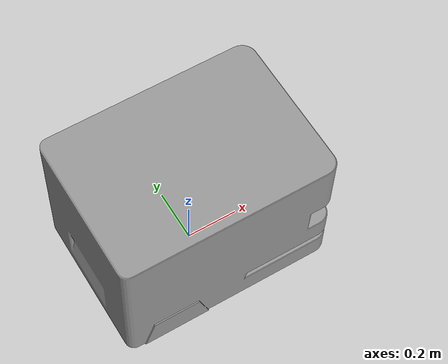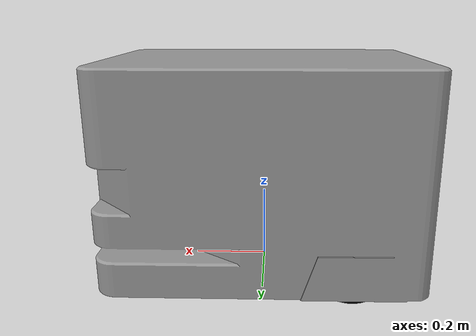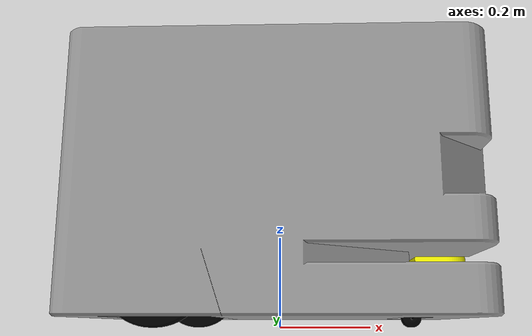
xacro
<?xml version="1.0"?>

<!--this is the main urdf.xacro file which builds actually the robot model by calling the other macros-->
<robot xmlns:xacro="http://wiki.ros.org/xacro" name="sew-maxo-mts-agv">

   <!-- import main macro -->
    <xacro:include filename="$(find sew_agv_description)/urdf/sew_agv_macro.urdf.xacro"/>

    <!-- set ros2 parameters, which will passsed to the macros, can be defined in the launch file-->
   <!-- set parameters defined in sew_agv_macro.xacro -->
    <xacro:arg name="tf_prefix" default=""/>

    <!-- ros2_control related parameters -->
    <xacro:arg name="robot_ip" default="NaN" />
    <xacro:arg name="generate_ros2_control_tag" default="true" />               <!--change default value ??? seems to be not passed to here-->

    <!-- simulation related parameters -->
    <xacro:arg name="use_fake_hardware" default="false" />
    <xacro:arg name="ros2_control_with_gazebo" default="false" />
    <xacro:arg name="standalone_gazebo" default="false" />

   <!-- call the main macro by passing above instanced parameters to build the arm -->

    <xacro:sew_agv_macro
        tf_prefix="$(arg tf_prefix)"
        use_fake_hardware="$(arg use_fake_hardware)"
        robot_ip="$(arg robot_ip)"
        generate_ros2_control_tag="$(arg generate_ros2_control_tag)"
        standalone_gazebo="$(arg standalone_gazebo)"
        ros2_control_with_gazebo="$(arg ros2_control_with_gazebo)"
        >
    </xacro:sew_agv_macro>

</robot>

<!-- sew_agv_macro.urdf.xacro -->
<robot xmlns:xacro="http://www.ros.org/wiki/xacro">

<!--include the helpers with fixed parameters-->
  <xacro:include filename="$(find sew_agv_description)/urdf/materials.urdf.xacro" />

<!--set some parameters with default values used by the macros (kinematics description, simulation and control)-->

  <xacro:macro name="sew_agv_macro" params="
    tf_prefix
    generate_ros2_control_tag:=false
    standalone_gazebo:=false
    ros2_control_with_gazebo:=false
    use_fake_hardware:=false
    robot_ip"
  >

<!--include ros2 control and create an instance if param generate_ros2_control_tag == true and pass necessary params-->

    <xacro:if value="${generate_ros2_control_tag}">
        <!-- ros2 control include -->
        <xacro:include filename="$(find sew_agv_description)/urdf/sew_agv_ros2_control.urdf.xacro" />
        <!-- ros2 control instance -->
        <xacro:sew_agv_ros2_control
          ros2_control_with_gazebo="${ros2_control_with_gazebo}"
          use_fake_hardware="${use_fake_hardware}"
          tf_prefix="${tf_prefix}"
          agv_ip="${robot_ip}"
        />
    </xacro:if>

<!--load standard gazebo diff_drive plugin-->

    <xacro:if value="${standalone_gazebo}">
        <xacro:include filename="$(find sew_agv_description)/urdf/sew_agv_gazebo_macro.urdf.xacro" />
        <xacro:sew_agv_gazebo tf_prefix="${tf_prefix}"/>
    </xacro:if>

<!--load gazebo hardware plugin for ros2_control diff_drive plugin-->

    <xacro:if value="${ros2_control_with_gazebo}">
        <xacro:include filename="$(find sew_agv_description)/urdf/sew_agv_ros2_control_gazebo_macro.urdf.xacro" />
        <xacro:sew_ros2_control_gazebo tf_prefix="${tf_prefix}"/>
    </xacro:if>

<!--define the main kinematic chain with links and joints (using the config-files) PI: 3.14159 PI/2: 1.57079 -->
    <xacro:materials tf_prefix="${tf_prefix}"/>

    <!--define non physical footprint joint (used in nav2 to determine robot center on the ground)-->
    <link name="${tf_prefix}base_footprint"/>

    <!--base/ main body fixed relative to the footprint , inertial definitions required due to the use in gazebo-->
    <joint name="${tf_prefix}base_footprint_joint" type="fixed">
        <origin rpy="0 0 0" xyz="0 0 0.58"/>
        <axis xyz="0 0 0"/>
        <parent link="${tf_prefix}base_footprint"/>
        <child link="${tf_prefix}base_link"/>
    </joint>
    <link name="${tf_prefix}base_link">
        <inertial>
            <mass value="250"/> <!--in kg-->
            <origin rpy="0 0 0" xyz="0 0 0"/>
            <inertia ixx="1.0" ixy="0.0" ixz="0.0" iyy="1.0" iyz="0.0" izz="1.0"/> <!--not realistic!-->
        </inertial>
        <visual>
            <origin rpy="0 0 0" xyz="0 0 0"/>
            <geometry>
                <mesh filename="file://$(find sew_agv_description)/meshes/visual/sew_maxo_mts_body.stl" scale="0.001 0.001 0.001"/>
            </geometry>
            <material name="${tf_prefix}grey"/>
        </visual>
        <collision>
            <origin rpy=" 0 0 0" xyz="0 0 0"/>
            <geometry>
                <mesh filename="file://$(find sew_agv_description)/meshes/collision/sew_maxo_mts_body.stl" scale="0.001 0.001 0.001"/>
            </geometry>
            <material name="${tf_prefix}red"/>
        </collision>
    </link>

    <!--front wheel / axis should match the rotation axis of the wheel, for simplicity reasons set this to fixed and disable friction in gazebo-->
    <joint name="${tf_prefix}caster_wheel_joint" type="fixed">
        <origin rpy="1.57079 0 0" xyz="0.290 0 -0.56"/>
        <axis xyz="0 0 0"/>
        <parent link="${tf_prefix}base_link"/>
        <child link="${tf_prefix}caster_wheel_link"/>
    </joint>
    <link name="${tf_prefix}caster_wheel_link" type="wheel">
        <inertial>
            <mass value="2"/>
            <inertia ixx="1.0" ixy="0.0" ixz="0.0" iyy="1.0" iyz="0.0" izz="1.0"/> <!--not realistic!-->
        </inertial>
        <visual>
            <origin rpy="0 0 0" xyz="0 0 0"/>
            <geometry>
                <mesh filename="file://$(find sew_agv_description)/meshes/visual/sew_maxo_mts_front_wheel.stl" scale="0.001 0.001 0.001"/>
            </geometry>
            <material name="${tf_prefix}black"/>
        </visual>
        <collision>
            <origin rpy="0 0 0" xyz="0 0 0"/>
            <geometry>
                <mesh filename="file://$(find sew_agv_description)/meshes/visual/sew_maxo_mts_front_wheel.stl" scale="0.001 0.001 0.001"/>
            </geometry>
            <material name="${tf_prefix}red"/>
        </collision>
    </link>

    <!--right back wheel / axis shold match the rotation axis of the wheel-->
    <joint name="${tf_prefix}wheel_right_joint" type="continuous">
        <origin rpy="0 0 -1.57079" xyz="-0.225 -0.2625 -0.48"/>
        <limit effort="100.0" velocity="3.5"/>
        <axis xyz="-1 0 0"/>
        <parent link="${tf_prefix}base_link"/>
        <child link="${tf_prefix}wheel_right_link"/>
    </joint>
    <link name="${tf_prefix}wheel_right_link" type="wheel">
        <inertial>
            <origin rpy="0 0 0" xyz="0 0 0"/>
            <mass value="2"/>
            <inertia ixx="1.0" ixy="0.0" ixz="0.0" iyy="1.0" iyz="0.0" izz="1.0"/> <!--not realistic!-->
        </inertial>
        <visual>
            <origin rpy="0 0 0" xyz="0 0 0"/>
            <geometry>
                <mesh filename="file://$(find sew_agv_description)/meshes/visual/sew_maxo_mts_wheel.stl" scale="0.001 0.001 0.001"/>
            </geometry>
            <material name="${tf_prefix}black"/>
        </visual>
        <collision>
            <origin rpy="0 0 0" xyz="0 0 0"/>
            <geometry>
                <mesh filename="file://$(find sew_agv_description)/meshes/visual/sew_maxo_mts_wheel.stl" scale="0.001 0.001 0.001"/>
            </geometry>
            <material name="${tf_prefix}red"/>
        </collision>
    </link>

    <!--left back wheel / axis shold match the rotation axis of the wheel-->
    <joint name="${tf_prefix}wheel_left_joint" type="continuous">
        <origin rpy="0 0 1.57079" xyz="-0.225 0.2625 -0.48"/>
        <limit effort="100.0" velocity="3.5"/>
        <axis xyz="1 0 0"/>
        <parent link="${tf_prefix}base_link"/>
        <child link="${tf_prefix}wheel_left_link"/>
    </joint>
    <link name="${tf_prefix}wheel_left_link" type="wheel">
        <inertial>
            <origin rpy="0 0 0" xyz="0 0 0"/>
            <mass value="2"/>
            <inertia ixx="1.0" ixy="0.0" ixz="0.0" iyy="1.0" iyz="0.0" izz="1.0"/> <!--not realistic!-->
        </inertial>
        <visual>
            <origin rpy="0 0 0" xyz="0 0 0"/>
            <geometry>
                <mesh filename="file://$(find sew_agv_description)/meshes/visual/sew_maxo_mts_wheel.stl" scale="0.001 0.001 0.001"/>
            </geometry>
            <material name="${tf_prefix}black"/>
        </visual>
        <collision>
            <origin rpy="0 0 0" xyz="0 0 0"/>
            <geometry>
                <mesh filename="file://$(find sew_agv_description)/meshes/visual/sew_maxo_mts_wheel.stl" scale="0.001 0.001 0.001"/>
            </geometry>
            <material name="${tf_prefix}red"/>
        </collision>
    </link>

    <!--lidar sensor, required due to the use in gazebo-->
    <joint name="${tf_prefix}lidar_joint" type="fixed">
        <axis xyz="0 0 0"/>
        <origin rpy="0 0 0 " xyz="0.355 0 -0.445"/>
        <parent link="${tf_prefix}base_link"/>
        <child link="${tf_prefix}lidar_link"/>
    </joint>
    <link name="${tf_prefix}lidar_link" type="laser">
        <inertial>
            <mass value="1"/>
            <origin rpy="0 0 0" xyz="0 0 0"/>
            <inertia ixx="1.0" ixy="0.0" ixz="0.0" iyy="1.0" iyz="0.0" izz="1.0"/> <!--not realistic!-->
        </inertial>
        <visual>
            <origin rpy="0 0 0" xyz="0 0 0"/>
            <geometry>
                <mesh filename="file://$(find sew_agv_description)/meshes/visual/sew_maxo_mts_lidar.stl" scale="0.001 0.001 0.001"/>
            </geometry>
            <material name="${tf_prefix}yellow"/>
        </visual>
        <collision>
            <origin rpy="0 0 0" xyz="0 0 0"/>
            <geometry>
                <mesh filename="file://$(find sew_agv_description)/meshes/visual/sew_maxo_mts_lidar.stl" scale="0.001 0.001 0.001"/>
            </geometry>
        </collision>
        <material name="${tf_prefix}red"/>
    </link>

  </xacro:macro>
</robot>

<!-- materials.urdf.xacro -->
<!--
Copied from ROS1 example:
https://github.com/ros-simulation/gazebo_ros_demos/blob/kinetic-devel/rrbot_description/urdf/materials.xacro
-->

<robot xmlns:xacro="http://wiki.ros.org/xacro">

  <xacro:macro name="materials" params="tf_prefix">

    <material name="${tf_prefix}black">
      <color rgba="0.0 0.0 0.0 1.0"/>
    </material>

    <material name="${tf_prefix}blue">
      <color rgba="0.0 0.0 0.8 1.0"/>
    </material>

    <material name="${tf_prefix}green">
      <color rgba="0.0 0.8 0.0 1.0"/>
    </material>

    <material name="${tf_prefix}yellow">
      <color rgba="1.0 1.0 0.0 1.0"/>
    </material>

    <material name="${tf_prefix}grey">
      <color rgba="0.6 0.6 0.6 1.0"/>
    </material>

    <material name="${tf_prefix}orange">
      <color rgba="${255/255} ${108/255} ${10/255} 1.0"/>
    </material>

    <material name="${tf_prefix}brown">
      <color rgba="${222/255} ${207/255} ${195/255} 1.0"/>
    </material>

    <material name="${tf_prefix}red">
      <color rgba="0.8 0.0 0.0 1.0"/>
    </material>

    <material name="${tf_prefix}white">
      <color rgba="1.0 1.0 1.0 1.0"/>
    </material>

  </xacro:macro>

</robot>
